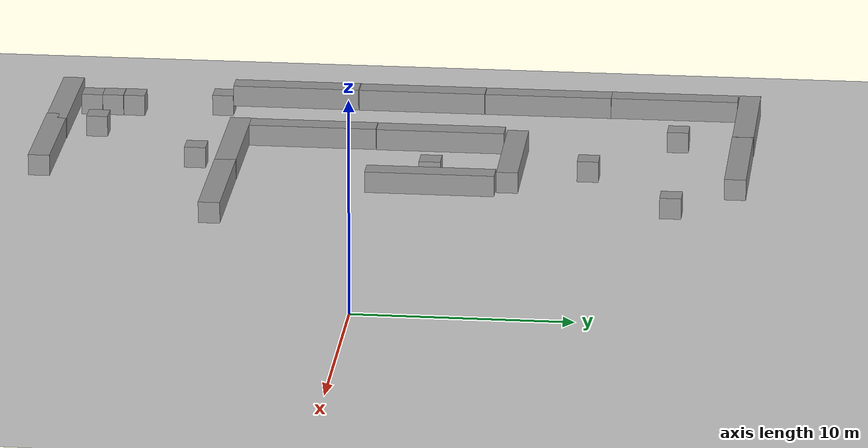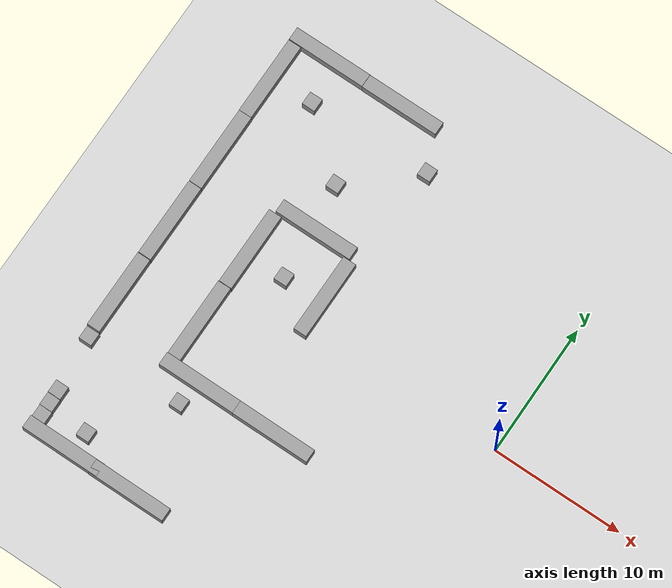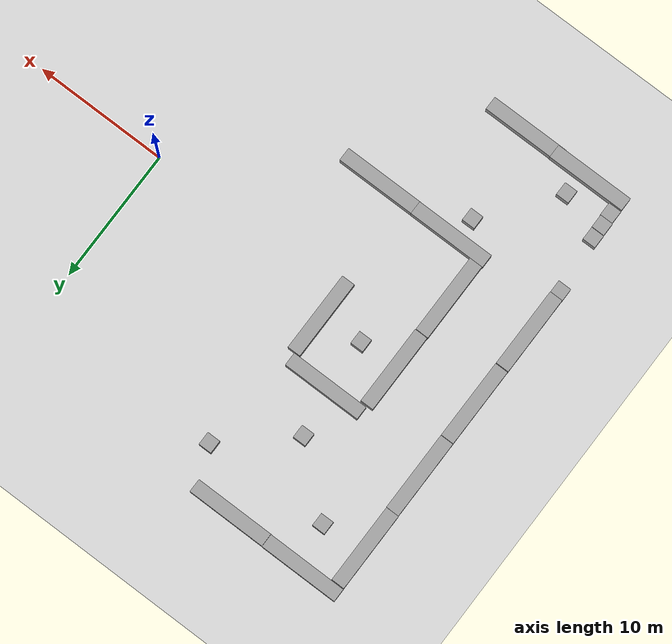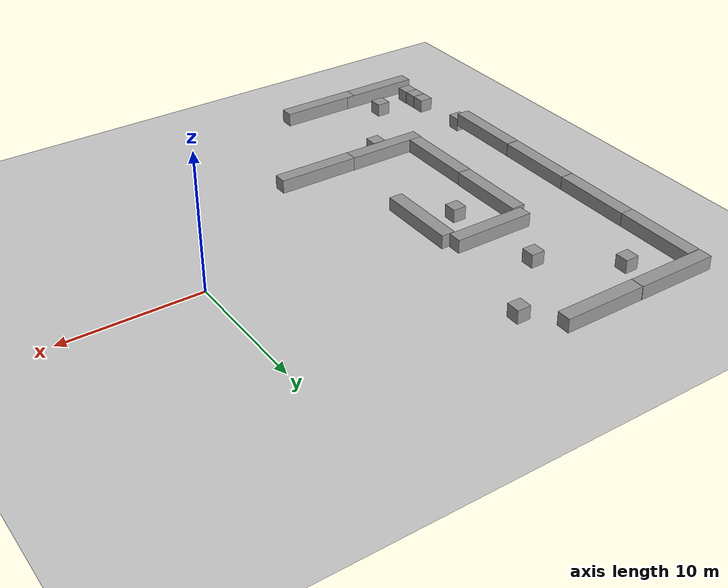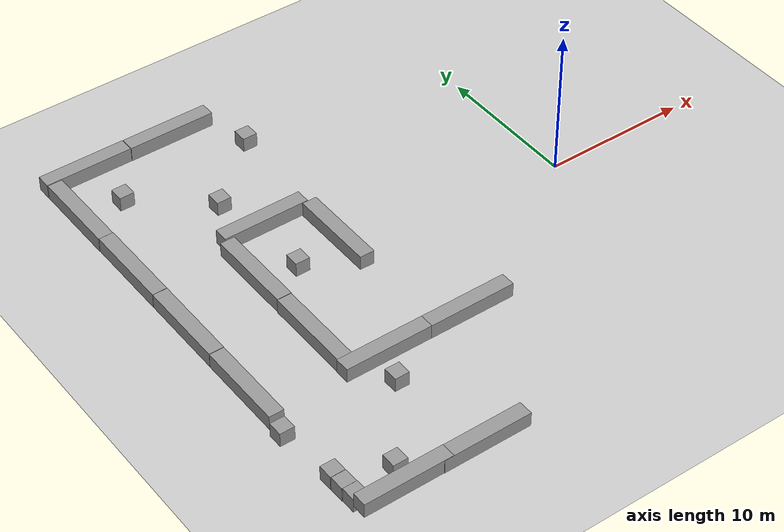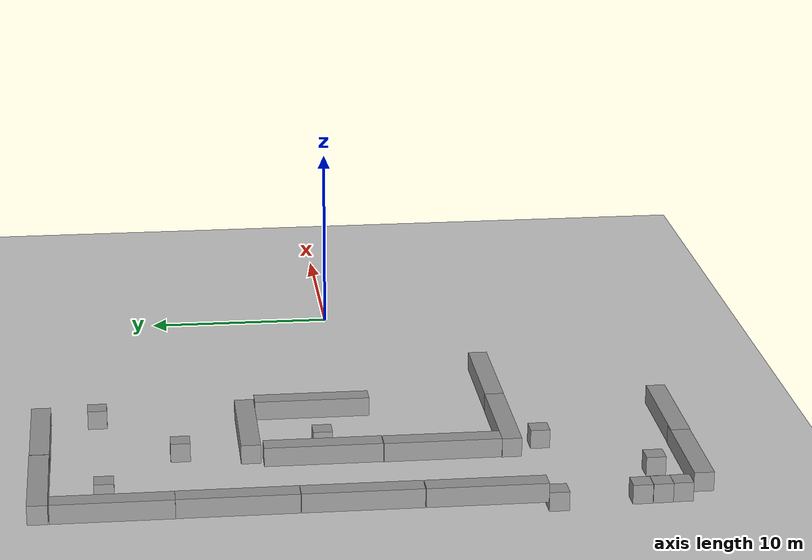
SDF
<sdf version="1.6">
 <world name="default">
  <model name="ground_plane">
   <static>1</static>
   <link name="link">
    <collision name="collision">
     <geometry><plane><normal>0 0 1</normal><size>100 100</size></plane></geometry>
     <surface>
      <contact><collide_bitmask>65535</collide_bitmask></contact>
      <friction><ode><mu>100</mu><mu2>50</mu2></ode></friction>
     </surface>
    </collision>
    <visual name="visual">
     <cast_shadows>0</cast_shadows>
     <geometry><plane><normal>0 0 1</normal><size>100 100</size></plane></geometry>
     <material>
      <script><uri>file://media/materials/scripts/gazebo.material</uri><name>Gazebo/Grey</name></script>
     </material>
    </visual>
   </link>
  </model>
  <model name="long_wall_0_12">
   <link name="link">
    <inertial>
     <mass>1</mass>
     <inertia>
      <ixx>0.166667</ixx>
      <ixy>0</ixy>
      <ixz>0</ixz>
      <iyy>0.166667</iyy>
      <iyz>0</iyz>
      <izz>0.166667</izz>
     </inertia>
    </inertial>
    <visual name="visual">
     <geometry><box><size>6 1 1</size></box></geometry>
     <material>
      <script><name>Gazebo/Grey</name><uri>file://media/materials/scripts/gazebo.material</uri></script>
      <shader type="vertex"><normal_map>__default__</normal_map></shader>
      <ambient>0.3 0.3 0.3 1</ambient>
      <diffuse>0.7 0.7 0.7 1</diffuse>
      <specular>0.01 0.01 0.01 1</specular>
      <emissive>0 0 0 1</emissive>
     </material>
     <pose>0 0 0.5 0 -0 0</pose>
    </visual>
    <collision name="collision">
     <geometry><box><size>1 1 1</size></box></geometry>
     <surface>
      <friction>
       <ode><mu>1</mu><mu2>1</mu2><fdir1>0 0 0</fdir1><slip1>0</slip1><slip2>0</slip2></ode>
       <torsional>
        <coefficient>1</coefficient>
        <patch_radius>0</patch_radius>
        <surface_radius>0</surface_radius>
        <use_patch_radius>1</use_patch_radius>
        <ode><slip>0</slip></ode>
       </torsional>
      </friction>
      <bounce><restitution_coefficient>0</restitution_coefficient><threshold>1e+06</threshold></bounce>
      <contact>
       <collide_without_contact>0</collide_without_contact>
       <collide_without_contact_bitmask>1</collide_without_contact_bitmask>
       <collide_bitmask>1</collide_bitmask>
       <ode>
        <soft_cfm>0</soft_cfm>
        <soft_erp>0.2</soft_erp>
        <kp>1e+13</kp>
        <kd>1</kd>
        <max_vel>0.01</max_vel>
        <min_depth>0</min_depth>
       </ode>
       <bullet>
        <split_impulse>1</split_impulse>
        <split_impulse_penetration_threshold>-0.01</split_impulse_penetration_threshold>
        <soft_cfm>0</soft_cfm>
        <soft_erp>0.2</soft_erp>
        <kp>1e+13</kp>
        <kd>1</kd>
       </bullet>
      </contact>
     </surface>
    </collision>
   </link>
   <static>0</static>
   <pose>-12.8634 -7.51779 0.5 0 -0 0</pose>
  </model>
  <model name="long_wall_0_13">
   <link name="link">
    <inertial>
     <mass>1</mass>
     <inertia>
      <ixx>0.166667</ixx>
      <ixy>0</ixy>
      <ixz>0</ixz>
      <iyy>0.166667</iyy>
      <iyz>0</iyz>
      <izz>0.166667</izz>
     </inertia>
    </inertial>
    <visual name="visual">
     <geometry><box><size>6 1 1</size></box></geometry>
     <material>
      <script><name>Gazebo/Grey</name><uri>file://media/materials/scripts/gazebo.material</uri></script>
      <shader type="vertex"><normal_map>__default__</normal_map></shader>
      <ambient>0.3 0.3 0.3 1</ambient>
      <diffuse>0.7 0.7 0.7 1</diffuse>
      <specular>0.01 0.01 0.01 1</specular>
      <emissive>0 0 0 1</emissive>
     </material>
     <pose>0 0 0.5 0 -0 0</pose>
    </visual>
    <collision name="collision">
     <geometry><box><size>1 1 1</size></box></geometry>
     <surface>
      <friction>
       <ode><mu>1</mu><mu2>1</mu2><fdir1>0 0 0</fdir1><slip1>0</slip1><slip2>0</slip2></ode>
       <torsional>
        <coefficient>1</coefficient>
        <patch_radius>0</patch_radius>
        <surface_radius>0</surface_radius>
        <use_patch_radius>1</use_patch_radius>
        <ode><slip>0</slip></ode>
       </torsional>
      </friction>
      <bounce><restitution_coefficient>0</restitution_coefficient><threshold>1e+06</threshold></bounce>
      <contact>
       <collide_without_contact>0</collide_without_contact>
       <collide_without_contact_bitmask>1</collide_without_contact_bitmask>
       <collide_bitmask>1</collide_bitmask>
       <ode>
        <soft_cfm>0</soft_cfm>
        <soft_erp>0.2</soft_erp>
        <kp>1e+13</kp>
        <kd>1</kd>
        <max_vel>0.01</max_vel>
        <min_depth>0</min_depth>
       </ode>
       <bullet>
        <split_impulse>1</split_impulse>
        <split_impulse_penetration_threshold>-0.01</split_impulse_penetration_threshold>
        <soft_cfm>0</soft_cfm>
        <soft_erp>0.2</soft_erp>
        <kp>1e+13</kp>
        <kd>1</kd>
       </bullet>
      </contact>
     </surface>
    </collision>
   </link>
   <static>0</static>
   <pose>-18.8282 -7.51104 0.5 0 -0 0</pose>
  </model>
  <model name="long_wall_0_14">
   <link name="link">
    <inertial>
     <mass>1</mass>
     <inertia>
      <ixx>0.166667</ixx>
      <ixy>0</ixy>
      <ixz>0</ixz>
      <iyy>0.166667</iyy>
      <iyz>0</iyz>
      <izz>0.166667</izz>
     </inertia>
    </inertial>
    <visual name="visual">
     <geometry><box><size>6 1 1</size></box></geometry>
     <material>
      <script><name>Gazebo/Grey</name><uri>file://media/materials/scripts/gazebo.material</uri></script>
      <shader type="vertex"><normal_map>__default__</normal_map></shader>
      <ambient>0.3 0.3 0.3 1</ambient>
      <diffuse>0.7 0.7 0.7 1</diffuse>
      <specular>0.01 0.01 0.01 1</specular>
      <emissive>0 0 0 1</emissive>
     </material>
     <pose>0 0 0.5 0 -0 0</pose>
    </visual>
    <collision name="collision">
     <geometry><box><size>1 1 1</size></box></geometry>
     <surface>
      <friction>
       <ode><mu>1</mu><mu2>1</mu2><fdir1>0 0 0</fdir1><slip1>0</slip1><slip2>0</slip2></ode>
       <torsional>
        <coefficient>1</coefficient>
        <patch_radius>0</patch_radius>
        <surface_radius>0</surface_radius>
        <use_patch_radius>1</use_patch_radius>
        <ode><slip>0</slip></ode>
       </torsional>
      </friction>
      <bounce><restitution_coefficient>0</restitution_coefficient><threshold>1e+06</threshold></bounce>
      <contact>
       <collide_without_contact>0</collide_without_contact>
       <collide_without_contact_bitmask>1</collide_without_contact_bitmask>
       <collide_bitmask>1</collide_bitmask>
       <ode>
        <soft_cfm>0</soft_cfm>
        <soft_erp>0.2</soft_erp>
        <kp>1e+13</kp>
        <kd>1</kd>
        <max_vel>0.01</max_vel>
        <min_depth>0</min_depth>
       </ode>
       <bullet>
        <split_impulse>1</split_impulse>
        <split_impulse_penetration_threshold>-0.01</split_impulse_penetration_threshold>
        <soft_cfm>0</soft_cfm>
        <soft_erp>0.2</soft_erp>
        <kp>1e+13</kp>
        <kd>1</kd>
       </bullet>
      </contact>
     </surface>
    </collision>
   </link>
   <static>0</static>
   <pose>-21.2859 -4.01748 0.5 0 0 -1.5708</pose>
  </model>
  <model name="long_wall_0_15">
   <link name="link">
    <inertial>
     <mass>1</mass>
     <inertia>
      <ixx>0.166667</ixx>
      <ixy>0</ixy>
      <ixz>0</ixz>
      <iyy>0.166667</iyy>
      <iyz>0</iyz>
      <izz>0.166667</izz>
     </inertia>
    </inertial>
    <visual name="visual">
     <geometry><box><size>6 1 1</size></box></geometry>
     <material>
      <script><name>Gazebo/Grey</name><uri>file://media/materials/scripts/gazebo.material</uri></script>
      <shader type="vertex"><normal_map>__default__</normal_map></shader>
      <ambient>0.3 0.3 0.3 1</ambient>
      <diffuse>0.7 0.7 0.7 1</diffuse>
      <specular>0.01 0.01 0.01 1</specular>
      <emissive>0 0 0 1</emissive>
     </material>
     <pose>0 0 0.5 0 -0 0</pose>
    </visual>
    <collision name="collision">
     <geometry><box><size>1 1 1</size></box></geometry>
     <surface>
      <friction>
       <ode><mu>1</mu><mu2>1</mu2><fdir1>0 0 0</fdir1><slip1>0</slip1><slip2>0</slip2></ode>
       <torsional>
        <coefficient>1</coefficient>
        <patch_radius>0</patch_radius>
        <surface_radius>0</surface_radius>
        <use_patch_radius>1</use_patch_radius>
        <ode><slip>0</slip></ode>
       </torsional>
      </friction>
      <bounce><restitution_coefficient>0</restitution_coefficient><threshold>1e+06</threshold></bounce>
      <contact>
       <collide_without_contact>0</collide_without_contact>
       <collide_without_contact_bitmask>1</collide_without_contact_bitmask>
       <collide_bitmask>1</collide_bitmask>
       <ode>
        <soft_cfm>0</soft_cfm>
        <soft_erp>0.2</soft_erp>
        <kp>1e+13</kp>
        <kd>1</kd>
        <max_vel>0.01</max_vel>
        <min_depth>0</min_depth>
       </ode>
       <bullet>
        <split_impulse>1</split_impulse>
        <split_impulse_penetration_threshold>-0.01</split_impulse_penetration_threshold>
        <soft_cfm>0</soft_cfm>
        <soft_erp>0.2</soft_erp>
        <kp>1e+13</kp>
        <kd>1</kd>
       </bullet>
      </contact>
     </surface>
    </collision>
   </link>
   <static>0</static>
   <pose>-15.2372 2.09169 0.5 0 0 -1.5708</pose>
  </model>
  <model name="long_wall_0_16">
   <link name="link">
    <inertial>
     <mass>1</mass>
     <inertia>
      <ixx>0.166667</ixx>
      <ixy>0</ixy>
      <ixz>0</ixz>
      <iyy>0.166667</iyy>
      <iyz>0</iyz>
      <izz>0.166667</izz>
     </inertia>
    </inertial>
    <visual name="visual">
     <geometry><box><size>6 1 1</size></box></geometry>
     <material>
      <script><name>Gazebo/Grey</name><uri>file://media/materials/scripts/gazebo.material</uri></script>
      <shader type="vertex"><normal_map>__default__</normal_map></shader>
      <ambient>0.3 0.3 0.3 1</ambient>
      <diffuse>0.7 0.7 0.7 1</diffuse>
      <specular>0.01 0.01 0.01 1</specular>
      <emissive>0 0 0 1</emissive>
     </material>
     <pose>0 0 0.5 0 -0 0</pose>
    </visual>
    <collision name="collision">
     <geometry><box><size>1 1 1</size></box></geometry>
     <surface>
      <friction>
       <ode><mu>1</mu><mu2>1</mu2><fdir1>0 0 0</fdir1><slip1>0</slip1><slip2>0</slip2></ode>
       <torsional>
        <coefficient>1</coefficient>
        <patch_radius>0</patch_radius>
        <surface_radius>0</surface_radius>
        <use_patch_radius>1</use_patch_radius>
        <ode><slip>0</slip></ode>
       </torsional>
      </friction>
      <bounce><restitution_coefficient>0</restitution_coefficient><threshold>1e+06</threshold></bounce>
      <contact>
       <collide_without_contact>0</collide_without_contact>
       <collide_without_contact_bitmask>1</collide_without_contact_bitmask>
       <collide_bitmask>1</collide_bitmask>
       <ode>
        <soft_cfm>0</soft_cfm>
        <soft_erp>0.2</soft_erp>
        <kp>1e+13</kp>
        <kd>1</kd>
        <max_vel>0.01</max_vel>
        <min_depth>0</min_depth>
       </ode>
       <bullet>
        <split_impulse>1</split_impulse>
        <split_impulse_penetration_threshold>-0.01</split_impulse_penetration_threshold>
        <soft_cfm>0</soft_cfm>
        <soft_erp>0.2</soft_erp>
        <kp>1e+13</kp>
        <kd>1</kd>
       </bullet>
      </contact>
     </surface>
    </collision>
   </link>
   <static>0</static>
   <pose>-21.2545 2.01112 0.5 0 0 -1.5708</pose>
  </model>
  <model name="long_wall_0_21">
   <link name="link">
    <inertial>
     <mass>1</mass>
     <inertia>
      <ixx>0.166667</ixx>
      <ixy>0</ixy>
      <ixz>0</ixz>
      <iyy>0.166667</iyy>
      <iyz>0</iyz>
      <izz>0.166667</izz>
     </inertia>
    </inertial>
    <visual name="visual">
     <geometry><box><size>6 1 1</size></box></geometry>
     <material>
      <script><name>Gazebo/Grey</name><uri>file://media/materials/scripts/gazebo.material</uri></script>
      <shader type="vertex"><normal_map>__default__</normal_map></shader>
      <ambient>0.3 0.3 0.3 1</ambient>
      <diffuse>0.7 0.7 0.7 1</diffuse>
      <specular>0.01 0.01 0.01 1</specular>
      <emissive>0 0 0 1</emissive>
     </material>
     <pose>0 0 0.5 0 -0 0</pose>
    </visual>
    <collision name="collision">
     <geometry><box><size>1 1 1</size></box></geometry>
     <surface>
      <friction>
       <ode><mu>1</mu><mu2>1</mu2><fdir1>0 0 0</fdir1><slip1>0</slip1><slip2>0</slip2></ode>
       <torsional>
        <coefficient>1</coefficient>
        <patch_radius>0</patch_radius>
        <surface_radius>0</surface_radius>
        <use_patch_radius>1</use_patch_radius>
        <ode><slip>0</slip></ode>
       </torsional>
      </friction>
      <bounce><restitution_coefficient>0</restitution_coefficient><threshold>1e+06</threshold></bounce>
      <contact>
       <collide_without_contact>0</collide_without_contact>
       <collide_without_contact_bitmask>1</collide_without_contact_bitmask>
       <collide_bitmask>1</collide_bitmask>
       <ode>
        <soft_cfm>0</soft_cfm>
        <soft_erp>0.2</soft_erp>
        <kp>1e+13</kp>
        <kd>1</kd>
        <max_vel>0.01</max_vel>
        <min_depth>0</min_depth>
       </ode>
       <bullet>
        <split_impulse>1</split_impulse>
        <split_impulse_penetration_threshold>-0.01</split_impulse_penetration_threshold>
        <soft_cfm>0</soft_cfm>
        <soft_erp>0.2</soft_erp>
        <kp>1e+13</kp>
        <kd>1</kd>
       </bullet>
      </contact>
     </surface>
    </collision>
   </link>
   <static>0</static>
   <pose>-18.3926 16.1642 0.5 0 -0 0</pose>
  </model>
  <model name="long_wall_0_22">
   <link name="link">
    <inertial>
     <mass>1</mass>
     <inertia>
      <ixx>0.166667</ixx>
      <ixy>0</ixy>
      <ixz>0</ixz>
      <iyy>0.166667</iyy>
      <iyz>0</iyz>
      <izz>0.166667</izz>
     </inertia>
    </inertial>
    <visual name="visual">
     <geometry><box><size>6 1 1</size></box></geometry>
     <material>
      <script><name>Gazebo/Grey</name><uri>file://media/materials/scripts/gazebo.material</uri></script>
      <shader type="vertex"><normal_map>__default__</normal_map></shader>
      <ambient>0.3 0.3 0.3 1</ambient>
      <diffuse>0.7 0.7 0.7 1</diffuse>
      <specular>0.01 0.01 0.01 1</specular>
      <emissive>0 0 0 1</emissive>
     </material>
     <pose>0 0 0.5 0 -0 0</pose>
    </visual>
    <collision name="collision">
     <geometry><box><size>1 1 1</size></box></geometry>
     <surface>
      <friction>
       <ode><mu>1</mu><mu2>1</mu2><fdir1>0 0 0</fdir1><slip1>0</slip1><slip2>0</slip2></ode>
       <torsional>
        <coefficient>1</coefficient>
        <patch_radius>0</patch_radius>
        <surface_radius>0</surface_radius>
        <use_patch_radius>1</use_patch_radius>
        <ode><slip>0</slip></ode>
       </torsional>
      </friction>
      <bounce><restitution_coefficient>0</restitution_coefficient><threshold>1e+06</threshold></bounce>
      <contact>
       <collide_without_contact>0</collide_without_contact>
       <collide_without_contact_bitmask>1</collide_without_contact_bitmask>
       <collide_bitmask>1</collide_bitmask>
       <ode>
        <soft_cfm>0</soft_cfm>
        <soft_erp>0.2</soft_erp>
        <kp>1e+13</kp>
        <kd>1</kd>
        <max_vel>0.01</max_vel>
        <min_depth>0</min_depth>
       </ode>
       <bullet>
        <split_impulse>1</split_impulse>
        <split_impulse_penetration_threshold>-0.01</split_impulse_penetration_threshold>
        <soft_cfm>0</soft_cfm>
        <soft_erp>0.2</soft_erp>
        <kp>1e+13</kp>
        <kd>1</kd>
       </bullet>
      </contact>
     </surface>
    </collision>
   </link>
   <static>0</static>
   <pose>-24.4067 16.1803 0.5 0 -0 0</pose>
  </model>
  <model name="long_wall_0_23">
   <link name="link">
    <inertial>
     <mass>1</mass>
     <inertia>
      <ixx>0.166667</ixx>
      <ixy>0</ixy>
      <ixz>0</ixz>
      <iyy>0.166667</iyy>
      <iyz>0</iyz>
      <izz>0.166667</izz>
     </inertia>
    </inertial>
    <visual name="visual">
     <geometry><box><size>6 1 1</size></box></geometry>
     <material>
      <script><name>Gazebo/Grey</name><uri>file://media/materials/scripts/gazebo.material</uri></script>
      <shader type="vertex"><normal_map>__default__</normal_map></shader>
      <ambient>0.3 0.3 0.3 1</ambient>
      <diffuse>0.7 0.7 0.7 1</diffuse>
      <specular>0.01 0.01 0.01 1</specular>
      <emissive>0 0 0 1</emissive>
     </material>
     <pose>0 0 0.5 0 -0 0</pose>
    </visual>
    <collision name="collision">
     <geometry><box><size>1 1 1</size></box></geometry>
     <surface>
      <friction>
       <ode><mu>1</mu><mu2>1</mu2><fdir1>0 0 0</fdir1><slip1>0</slip1><slip2>0</slip2></ode>
       <torsional>
        <coefficient>1</coefficient>
        <patch_radius>0</patch_radius>
        <surface_radius>0</surface_radius>
        <use_patch_radius>1</use_patch_radius>
        <ode><slip>0</slip></ode>
       </torsional>
      </friction>
      <bounce><restitution_coefficient>0</restitution_coefficient><threshold>1e+06</threshold></bounce>
      <contact>
       <collide_without_contact>0</collide_without_contact>
       <collide_without_contact_bitmask>1</collide_without_contact_bitmask>
       <collide_bitmask>1</collide_bitmask>
       <ode>
        <soft_cfm>0</soft_cfm>
        <soft_erp>0.2</soft_erp>
        <kp>1e+13</kp>
        <kd>1</kd>
        <max_vel>0.01</max_vel>
        <min_depth>0</min_depth>
       </ode>
       <bullet>
        <split_impulse>1</split_impulse>
        <split_impulse_penetration_threshold>-0.01</split_impulse_penetration_threshold>
        <soft_cfm>0</soft_cfm>
        <soft_erp>0.2</soft_erp>
        <kp>1e+13</kp>
        <kd>1</kd>
       </bullet>
      </contact>
     </surface>
    </collision>
   </link>
   <static>0</static>
   <pose>-26.8967 12.6292 0.5 0 0 -1.5708</pose>
  </model>
  <model name="long_wall_0_24">
   <link name="link">
    <inertial>
     <mass>1</mass>
     <inertia>
      <ixx>0.166667</ixx>
      <ixy>0</ixy>
      <ixz>0</ixz>
      <iyy>0.166667</iyy>
      <iyz>0</iyz>
      <izz>0.166667</izz>
     </inertia>
    </inertial>
    <visual name="visual">
     <geometry><box><size>6 1 1</size></box></geometry>
     <material>
      <script><name>Gazebo/Grey</name><uri>file://media/materials/scripts/gazebo.material</uri></script>
      <shader type="vertex"><normal_map>__default__</normal_map></shader>
      <ambient>0.3 0.3 0.3 1</ambient>
      <diffuse>0.7 0.7 0.7 1</diffuse>
      <specular>0.01 0.01 0.01 1</specular>
      <emissive>0 0 0 1</emissive>
     </material>
     <pose>0 0 0.5 0 -0 0</pose>
    </visual>
    <collision name="collision">
     <geometry><box><size>1 1 1</size></box></geometry>
     <surface>
      <friction>
       <ode><mu>1</mu><mu2>1</mu2><fdir1>0 0 0</fdir1><slip1>0</slip1><slip2>0</slip2></ode>
       <torsional>
        <coefficient>1</coefficient>
        <patch_radius>0</patch_radius>
        <surface_radius>0</surface_radius>
        <use_patch_radius>1</use_patch_radius>
        <ode><slip>0</slip></ode>
       </torsional>
      </friction>
      <bounce><restitution_coefficient>0</restitution_coefficient><threshold>1e+06</threshold></bounce>
      <contact>
       <collide_without_contact>0</collide_without_contact>
       <collide_without_contact_bitmask>1</collide_without_contact_bitmask>
       <collide_bitmask>1</collide_bitmask>
       <ode>
        <soft_cfm>0</soft_cfm>
        <soft_erp>0.2</soft_erp>
        <kp>1e+13</kp>
        <kd>1</kd>
        <max_vel>0.01</max_vel>
        <min_depth>0</min_depth>
       </ode>
       <bullet>
        <split_impulse>1</split_impulse>
        <split_impulse_penetration_threshold>-0.01</split_impulse_penetration_threshold>
        <soft_cfm>0</soft_cfm>
        <soft_erp>0.2</soft_erp>
        <kp>1e+13</kp>
        <kd>1</kd>
       </bullet>
      </contact>
     </surface>
    </collision>
   </link>
   <static>0</static>
   <pose>-26.8771 6.62686 0.5 0 0 -1.5708</pose>
  </model>
  <model name="long_wall_0_25">
   <link name="link">
    <inertial>
     <mass>1</mass>
     <inertia>
      <ixx>0.166667</ixx>
      <ixy>0</ixy>
      <ixz>0</ixz>
      <iyy>0.166667</iyy>
      <iyz>0</iyz>
      <izz>0.166667</izz>
     </inertia>
    </inertial>
    <visual name="visual">
     <geometry><box><size>6 1 1</size></box></geometry>
     <material>
      <script><name>Gazebo/Grey</name><uri>file://media/materials/scripts/gazebo.material</uri></script>
      <shader type="vertex"><normal_map>__default__</normal_map></shader>
      <ambient>0.3 0.3 0.3 1</ambient>
      <diffuse>0.7 0.7 0.7 1</diffuse>
      <specular>0.01 0.01 0.01 1</specular>
      <emissive>0 0 0 1</emissive>
     </material>
     <pose>0 0 0.5 0 -0 0</pose>
    </visual>
    <collision name="collision">
     <geometry><box><size>1 1 1</size></box></geometry>
     <surface>
      <friction>
       <ode><mu>1</mu><mu2>1</mu2><fdir1>0 0 0</fdir1><slip1>0</slip1><slip2>0</slip2></ode>
       <torsional>
        <coefficient>1</coefficient>
        <patch_radius>0</patch_radius>
        <surface_radius>0</surface_radius>
        <use_patch_radius>1</use_patch_radius>
        <ode><slip>0</slip></ode>
       </torsional>
      </friction>
      <bounce><restitution_coefficient>0</restitution_coefficient><threshold>1e+06</threshold></bounce>
      <contact>
       <collide_without_contact>0</collide_without_contact>
       <collide_without_contact_bitmask>1</collide_without_contact_bitmask>
       <collide_bitmask>1</collide_bitmask>
       <ode>
        <soft_cfm>0</soft_cfm>
        <soft_erp>0.2</soft_erp>
        <kp>1e+13</kp>
        <kd>1</kd>
        <max_vel>0.01</max_vel>
        <min_depth>0</min_depth>
       </ode>
       <bullet>
        <split_impulse>1</split_impulse>
        <split_impulse_penetration_threshold>-0.01</split_impulse_penetration_threshold>
        <soft_cfm>0</soft_cfm>
        <soft_erp>0.2</soft_erp>
        <kp>1e+13</kp>
        <kd>1</kd>
       </bullet>
      </contact>
     </surface>
    </collision>
   </link>
   <static>0</static>
   <pose>-26.8814 0.603165 0.5 0 0 -1.57271</pose>
  </model>
  <model name="long_wall_0_26">
   <link name="link">
    <inertial>
     <mass>1</mass>
     <inertia>
      <ixx>0.166667</ixx>
      <ixy>0</ixy>
      <ixz>0</ixz>
      <iyy>0.166667</iyy>
      <iyz>0</iyz>
      <izz>0.166667</izz>
     </inertia>
    </inertial>
    <visual name="visual">
     <geometry><box><size>6 1 1</size></box></geometry>
     <material>
      <script><name>Gazebo/Grey</name><uri>file://media/materials/scripts/gazebo.material</uri></script>
      <shader type="vertex"><normal_map>__default__</normal_map></shader>
      <ambient>0.3 0.3 0.3 1</ambient>
      <diffuse>0.7 0.7 0.7 1</diffuse>
      <specular>0.01 0.01 0.01 1</specular>
      <emissive>0 0 0 1</emissive>
     </material>
     <pose>0 0 0.5 0 -0 0</pose>
    </visual>
    <collision name="collision">
     <geometry><box><size>1 1 1</size></box></geometry>
     <surface>
      <friction>
       <ode><mu>1</mu><mu2>1</mu2><fdir1>0 0 0</fdir1><slip1>0</slip1><slip2>0</slip2></ode>
       <torsional>
        <coefficient>1</coefficient>
        <patch_radius>0</patch_radius>
        <surface_radius>0</surface_radius>
        <use_patch_radius>1</use_patch_radius>
        <ode><slip>0</slip></ode>
       </torsional>
      </friction>
      <bounce><restitution_coefficient>0</restitution_coefficient><threshold>1e+06</threshold></bounce>
      <contact>
       <collide_without_contact>0</collide_without_contact>
       <collide_without_contact_bitmask>1</collide_without_contact_bitmask>
       <collide_bitmask>1</collide_bitmask>
       <ode>
        <soft_cfm>0</soft_cfm>
        <soft_erp>0.2</soft_erp>
        <kp>1e+13</kp>
        <kd>1</kd>
        <max_vel>0.01</max_vel>
        <min_depth>0</min_depth>
       </ode>
       <bullet>
        <split_impulse>1</split_impulse>
        <split_impulse_penetration_threshold>-0.01</split_impulse_penetration_threshold>
        <soft_cfm>0</soft_cfm>
        <soft_erp>0.2</soft_erp>
        <kp>1e+13</kp>
        <kd>1</kd>
       </bullet>
      </contact>
     </surface>
    </collision>
   </link>
   <static>0</static>
   <pose>-26.8967 -5.43784 0.5 0 0 -1.5708</pose>
  </model>
  <model name="long_wall_0_27">
   <link name="link">
    <inertial>
     <mass>1</mass>
     <inertia>
      <ixx>0.166667</ixx>
      <ixy>0</ixy>
      <ixz>0</ixz>
      <iyy>0.166667</iyy>
      <iyz>0</iyz>
      <izz>0.166667</izz>
     </inertia>
    </inertial>
    <visual name="visual">
     <geometry><box><size>6 1 1</size></box></geometry>
     <material>
      <script><name>Gazebo/Grey</name><uri>file://media/materials/scripts/gazebo.material</uri></script>
      <shader type="vertex"><normal_map>__default__</normal_map></shader>
      <ambient>0.3 0.3 0.3 1</ambient>
      <diffuse>0.7 0.7 0.7 1</diffuse>
      <specular>0.01 0.01 0.01 1</specular>
      <emissive>0 0 0 1</emissive>
     </material>
     <pose>0 0 0.5 0 -0 0</pose>
    </visual>
    <collision name="collision">
     <geometry><box><size>1 1 1</size></box></geometry>
     <surface>
      <friction>
       <ode><mu>1</mu><mu2>1</mu2><fdir1>0 0 0</fdir1><slip1>0</slip1><slip2>0</slip2></ode>
       <torsional>
        <coefficient>1</coefficient>
        <patch_radius>0</patch_radius>
        <surface_radius>0</surface_radius>
        <use_patch_radius>1</use_patch_radius>
        <ode><slip>0</slip></ode>
       </torsional>
      </friction>
      <bounce><restitution_coefficient>0</restitution_coefficient><threshold>1e+06</threshold></bounce>
      <contact>
       <collide_without_contact>0</collide_without_contact>
       <collide_without_contact_bitmask>1</collide_without_contact_bitmask>
       <collide_bitmask>1</collide_bitmask>
       <ode>
        <soft_cfm>0</soft_cfm>
        <soft_erp>0.2</soft_erp>
        <kp>1e+13</kp>
        <kd>1</kd>
        <max_vel>0.01</max_vel>
        <min_depth>0</min_depth>
       </ode>
       <bullet>
        <split_impulse>1</split_impulse>
        <split_impulse_penetration_threshold>-0.01</split_impulse_penetration_threshold>
        <soft_cfm>0</soft_cfm>
        <soft_erp>0.2</soft_erp>
        <kp>1e+13</kp>
        <kd>1</kd>
       </bullet>
      </contact>
     </surface>
    </collision>
   </link>
   <static>0</static>
   <pose>-18.3163 5.64152 0.5 0 -0 0</pose>
  </model>
  <model name="long_wall_0_40">
   <link name="link">
    <inertial>
     <mass>1</mass>
     <inertia>
      <ixx>0.166667</ixx>
      <ixy>0</ixy>
      <ixz>0</ixz>
      <iyy>0.166667</iyy>
      <iyz>0</iyz>
      <izz>0.166667</izz>
     </inertia>
    </inertial>
    <visual name="visual">
     <geometry><box><size>6 1 1</size></box></geometry>
     <material>
      <script><name>Gazebo/Grey</name><uri>file://media/materials/scripts/gazebo.material</uri></script>
      <shader type="vertex"><normal_map>__default__</normal_map></shader>
      <ambient>0.3 0.3 0.3 1</ambient>
      <diffuse>0.7 0.7 0.7 1</diffuse>
      <specular>0.01 0.01 0.01 1</specular>
      <emissive>0 0 0 1</emissive>
     </material>
     <pose>0 0 0.5 0 -0 0</pose>
    </visual>
    <collision name="collision">
     <geometry><box><size>1 1 1</size></box></geometry>
     <surface>
      <friction>
       <ode><mu>1</mu><mu2>1</mu2><fdir1>0 0 0</fdir1><slip1>0</slip1><slip2>0</slip2></ode>
       <torsional>
        <coefficient>1</coefficient>
        <patch_radius>0</patch_radius>
        <surface_radius>0</surface_radius>
        <use_patch_radius>1</use_patch_radius>
        <ode><slip>0</slip></ode>
       </torsional>
      </friction>
      <bounce><restitution_coefficient>0</restitution_coefficient><threshold>1e+06</threshold></bounce>
      <contact>
       <collide_without_contact>0</collide_without_contact>
       <collide_without_contact_bitmask>1</collide_without_contact_bitmask>
       <collide_bitmask>1</collide_bitmask>
       <ode>
        <soft_cfm>0</soft_cfm>
        <soft_erp>0.2</soft_erp>
        <kp>1e+13</kp>
        <kd>1</kd>
        <max_vel>0.01</max_vel>
        <min_depth>0</min_depth>
       </ode>
       <bullet>
        <split_impulse>1</split_impulse>
        <split_impulse_penetration_threshold>-0.01</split_impulse_penetration_threshold>
        <soft_cfm>0</soft_cfm>
        <soft_erp>0.2</soft_erp>
        <kp>1e+13</kp>
        <kd>1</kd>
       </bullet>
      </contact>
     </surface>
    </collision>
   </link>
   <static>0</static>
   <pose>-18.5686 -16.2065 0.5 0 -0 0</pose>
  </model>
  <model name="long_wall_0_41">
   <link name="link">
    <inertial>
     <mass>1</mass>
     <inertia>
      <ixx>0.166667</ixx>
      <ixy>0</ixy>
      <ixz>0</ixz>
      <iyy>0.166667</iyy>
      <iyz>0</iyz>
      <izz>0.166667</izz>
     </inertia>
    </inertial>
    <visual name="visual">
     <geometry><box><size>6 1 1</size></box></geometry>
     <material>
      <script><name>Gazebo/Grey</name><uri>file://media/materials/scripts/gazebo.material</uri></script>
      <shader type="vertex"><normal_map>__default__</normal_map></shader>
      <ambient>0.3 0.3 0.3 1</ambient>
      <diffuse>0.7 0.7 0.7 1</diffuse>
      <specular>0.01 0.01 0.01 1</specular>
      <emissive>0 0 0 1</emissive>
     </material>
     <pose>0 0 0.5 0 -0 0</pose>
    </visual>
    <collision name="collision">
     <geometry><box><size>1 1 1</size></box></geometry>
     <surface>
      <friction>
       <ode><mu>1</mu><mu2>1</mu2><fdir1>0 0 0</fdir1><slip1>0</slip1><slip2>0</slip2></ode>
       <torsional>
        <coefficient>1</coefficient>
        <patch_radius>0</patch_radius>
        <surface_radius>0</surface_radius>
        <use_patch_radius>1</use_patch_radius>
        <ode><slip>0</slip></ode>
       </torsional>
      </friction>
      <bounce><restitution_coefficient>0</restitution_coefficient><threshold>1e+06</threshold></bounce>
      <contact>
       <collide_without_contact>0</collide_without_contact>
       <collide_without_contact_bitmask>1</collide_without_contact_bitmask>
       <collide_bitmask>1</collide_bitmask>
       <ode>
        <soft_cfm>0</soft_cfm>
        <soft_erp>0.2</soft_erp>
        <kp>1e+13</kp>
        <kd>1</kd>
        <max_vel>0.01</max_vel>
        <min_depth>0</min_depth>
       </ode>
       <bullet>
        <split_impulse>1</split_impulse>
        <split_impulse_penetration_threshold>-0.01</split_impulse_penetration_threshold>
        <soft_cfm>0</soft_cfm>
        <soft_erp>0.2</soft_erp>
        <kp>1e+13</kp>
        <kd>1</kd>
       </bullet>
      </contact>
     </surface>
    </collision>
   </link>
   <static>0</static>
   <pose>-23.9224 -16.1833 0.5 0 -0 0</pose>
  </model>
  <model name="unit_box_7">
   <pose>-26.897 -8.95329 0.499995 0 1e-05 0</pose>
   <link name="link">
    <inertial>
     <mass>1</mass>
     <inertia>
      <ixx>0.166667</ixx>
      <ixy>0</ixy>
      <ixz>0</ixz>
      <iyy>0.166667</iyy>
      <iyz>0</iyz>
      <izz>0.166667</izz>
     </inertia>
    </inertial>
    <collision name="collision"><geometry><box><size>1 1 1</size></box></geometry></collision>
    <visual name="visual">
     <geometry><box><size>1 1 1</size></box></geometry>
     <material>
      <script><name>Gazebo/Grey</name><uri>file://media/materials/scripts/gazebo.material</uri></script>
     </material>
    </visual>
   </link>
  </model>
  <model name="unit_box_8">
   <pose>-26.4302 -15.1874 0.499995 0 1e-05 0</pose>
   <link name="link">
    <inertial>
     <mass>1</mass>
     <inertia>
      <ixx>0.166667</ixx>
      <ixy>0</ixy>
      <ixz>0</ixz>
      <iyy>0.166667</iyy>
      <iyz>0</iyz>
      <izz>0.166667</izz>
     </inertia>
    </inertial>
    <collision name="collision"><geometry><box><size>1 1 1</size></box></geometry></collision>
    <visual name="visual">
     <geometry><box><size>1 1 1</size></box></geometry>
     <material>
      <script><name>Gazebo/Grey</name><uri>file://media/materials/scripts/gazebo.material</uri></script>
     </material>
    </visual>
   </link>
  </model>
  <model name="unit_box_9">
   <pose>-26.4697 -14.1834 0.499995 0 1e-05 0</pose>
   <link name="link">
    <inertial>
     <mass>1</mass>
     <inertia>
      <ixx>0.166667</ixx>
      <ixy>0</ixy>
      <ixz>0</ixz>
      <iyy>0.166667</iyy>
      <iyz>0</iyz>
      <izz>0.166667</izz>
     </inertia>
    </inertial>
    <collision name="collision"><geometry><box><size>1 1 1</size></box></geometry></collision>
    <visual name="visual">
     <geometry><box><size>1 1 1</size></box></geometry>
     <material>
      <script><name>Gazebo/Grey</name><uri>file://media/materials/scripts/gazebo.material</uri></script>
     </material>
    </visual>
   </link>
  </model>
  <model name="unit_box_10">
   <pose>-26.4901 -13.1642 0.499995 0 1e-05 0</pose>
   <link name="link">
    <inertial>
     <mass>1</mass>
     <inertia>
      <ixx>0.166667</ixx>
      <ixy>0</ixy>
      <ixz>0</ixz>
      <iyy>0.166667</iyy>
      <iyz>0</iyz>
      <izz>0.166667</izz>
     </inertia>
    </inertial>
    <collision name="collision"><geometry><box><size>1 1 1</size></box></geometry></collision>
    <visual name="visual">
     <geometry><box><size>1 1 1</size></box></geometry>
     <material>
      <script><name>Gazebo/Grey</name><uri>file://media/materials/scripts/gazebo.material</uri></script>
     </material>
    </visual>
   </link>
  </model>
  <model name="unit_box_13">
   <pose>-18.3599 1.8021 0.499995 -1e-05 0 0</pose>
   <link name="link">
    <inertial>
     <mass>1</mass>
     <inertia>
      <ixx>0.166667</ixx>
      <ixy>0</ixy>
      <ixz>0</ixz>
      <iyy>0.166667</iyy>
      <iyz>0</iyz>
      <izz>0.166667</izz>
     </inertia>
    </inertial>
    <collision name="collision"><geometry><box><size>1 1 1</size></box></geometry></collision>
    <visual name="visual">
     <geometry><box><size>1 1 1</size></box></geometry>
     <material>
      <script><name>Gazebo/Grey</name><uri>file://media/materials/scripts/gazebo.material</uri></script>
     </material>
    </visual>
   </link>
  </model>
  <model name="unit_box_17">
   <pose>-19.288 -9.3201 0.499995 -1e-05 0 0</pose>
   <link name="link">
    <inertial>
     <mass>1</mass>
     <inertia>
      <ixx>0.166667</ixx>
      <ixy>0</ixy>
      <ixz>0</ixz>
      <iyy>0.166667</iyy>
      <iyz>0</iyz>
      <izz>0.166667</izz>
     </inertia>
    </inertial>
    <collision name="collision"><geometry><box><size>1 1 1</size></box></geometry></collision>
    <visual name="visual">
     <geometry><box><size>1 1 1</size></box></geometry>
     <material>
      <script><name>Gazebo/Grey</name><uri>file://media/materials/scripts/gazebo.material</uri></script>
     </material>
    </visual>
   </link>
  </model>
  <model name="unit_box_18">
   <pose>-23.6832 13.0171 0.499995 0 1e-05 0</pose>
   <link name="link">
    <inertial>
     <mass>1</mass>
     <inertia>
      <ixx>0.166667</ixx>
      <ixy>0</ixy>
      <ixz>0</ixz>
      <iyy>0.166667</iyy>
      <iyz>0</iyz>
      <izz>0.166667</izz>
     </inertia>
    </inertial>
    <collision name="collision"><geometry><box><size>1 1 1</size></box></geometry></collision>
    <visual name="visual">
     <geometry><box><size>1 1 1</size></box></geometry>
     <material>
      <script><name>Gazebo/Grey</name><uri>file://media/materials/scripts/gazebo.material</uri></script>
     </material>
    </visual>
   </link>
  </model>
  <model name="unit_box_19">
   <pose>-19.1171 9.12111 0.499995 -1e-05 0 0</pose>
   <link name="link">
    <inertial>
     <mass>1</mass>
     <inertia>
      <ixx>0.166667</ixx>
      <ixy>0</ixy>
      <ixz>0</ixz>
      <iyy>0.166667</iyy>
      <iyz>0</iyz>
      <izz>0.166667</izz>
     </inertia>
    </inertial>
    <collision name="collision"><geometry><box><size>1 1 1</size></box></geometry></collision>
    <visual name="visual">
     <geometry><box><size>1 1 1</size></box></geometry>
     <material>
      <script><name>Gazebo/Grey</name><uri>file://media/materials/scripts/gazebo.material</uri></script>
     </material>
    </visual>
   </link>
  </model>
  <model name="unit_box_20">
   <pose>-14.4209 13.2878 0.499995 0 1e-05 0</pose>
   <link name="link">
    <inertial>
     <mass>1</mass>
     <inertia>
      <ixx>0.166667</ixx>
      <ixy>0</ixy>
      <ixz>0</ixz>
      <iyy>0.166667</iyy>
      <iyz>0</iyz>
      <izz>0.166667</izz>
     </inertia>
    </inertial>
    <collision name="collision"><geometry><box><size>1 1 1</size></box></geometry></collision>
    <visual name="visual">
     <geometry><box><size>1 1 1</size></box></geometry>
     <material>
      <script><name>Gazebo/Grey</name><uri>file://media/materials/scripts/gazebo.material</uri></script>
     </material>
    </visual>
   </link>
  </model>
  <model name="unit_box_26">
   <pose>-23.266 -14.5072 0.5 0 -0 0</pose>
   <link name="link">
    <inertial>
     <mass>1</mass>
     <inertia>
      <ixx>0.166667</ixx>
      <ixy>0</ixy>
      <ixz>0</ixz>
      <iyy>0.166667</iyy>
      <iyz>0</iyz>
      <izz>0.166667</izz>
     </inertia>
    </inertial>
    <collision name="collision"><geometry><box><size>1 1 1</size></box></geometry></collision>
    <visual name="visual">
     <geometry><box><size>1 1 1</size></box></geometry>
     <material>
      <script><name>Gazebo/Grey</name><uri>file://media/materials/scripts/gazebo.material</uri></script>
     </material>
    </visual>
   </link>
  </model>
 </world>
</sdf>
